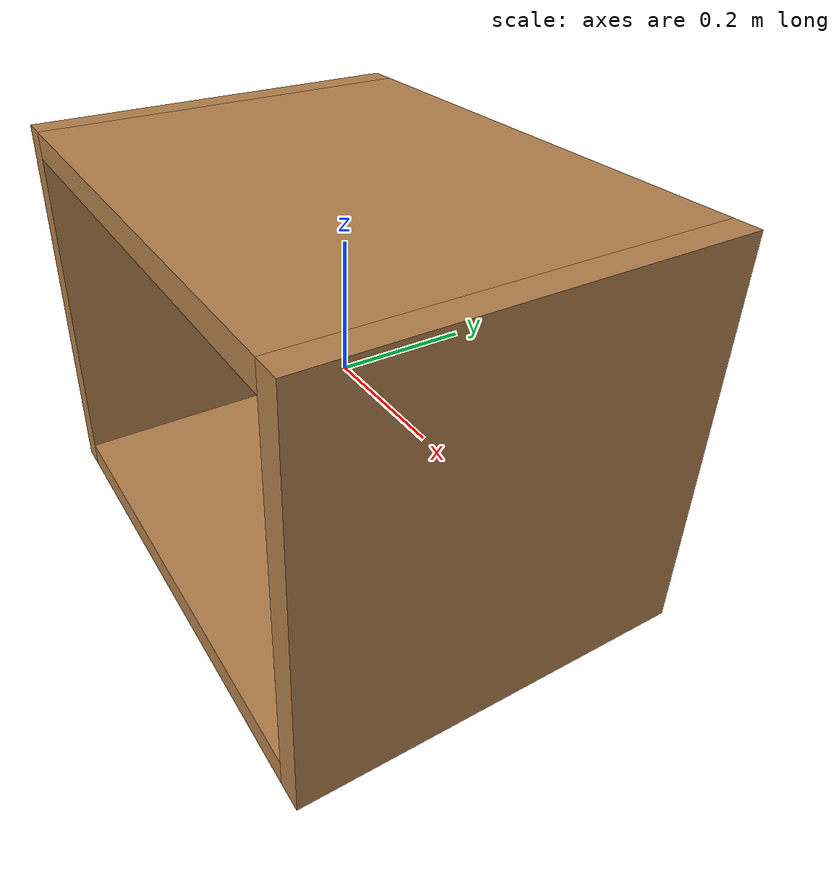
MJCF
<mujoco model="hinge_cab">
  <asset>
    <texture file="visuals/wood1.png" type="cube" name="tex"/>
    <material name="mat" shininess="0.1" texture="tex"/>
  </asset>
  <default>
    <default class="cab">
      <geom group="0" density="10"/>
    </default>
    <default class="region">
      <geom group="1" conaffinity="0" contype="0" rgba="0 1 0 0"/>
    </default>
  </default>
  <worldbody>
    <body>
      <body name="object">
        <geom pos="0.0 0 0.28" size="0.36 0.3 0.02" type="box" material="mat" class="cab" name="top"/>
        <geom pos="0.0 0 -0.28" size="0.36 0.3 0.02" type="box" material="mat" class="cab" name="bottom"/>
        <geom pos="0.0 0.28 0" size="0.36 0.02 0.26" type="box" material="mat" class="cab" name="back"/>
        <geom pos="0.38 0 0" size="0.02 0.3 0.3" type="box" material="mat" class="cab" name="right"/>
        <geom pos="-0.38 0 0" size="0.02 0.3 0.3" type="box" material="mat" class="cab" name="left"/>
        <body name="hingeleftdoor" pos="-0.38 -0.32 0">
          <joint axis="0 0 1" name="leftdoorhinge" limited="true" range="-1.57 0" damping="2"/>
          <site rgba="1 0 0 0" size="0.005" pos="-0.25 -0.20 0" name="leftdoor_p1"/>
          <site rgba="0 1 0 0" size="0.005" pos="-0.20 -0.20 0" name="leftdoor_p2"/>
          <site rgba="0 0 1 0" size="0.005" pos="-0.25 -0.20 0.05" name="leftdoor_p3"/>
        </body>
        <body name="hingerightdoor" pos="0.38 -0.32 0">
          <joint axis="0 0 1" name="rightdoorhinge" limited="true" range="0 1.57" damping="2"/>
          <site rgba="1 0 0 0" size="0.005" pos="0.25 -0.20 0" name="rightdoor_p1"/>
          <site rgba="0 1 0 0" size="0.005" pos="0.20 -0.20 0" name="rightdoor_p2"/>
          <site rgba="0 0 1 0" size="0.005" pos="0.25 -0.20 0.05" name="rightdoor_p3"/>
        </body>
        <!-- exterior bounding box points -->
        <geom class="region" name="reg_main" type="box" pos="0.0 0.0 0.0" size="0.0001 0.0001 0.0001"/>
      </body>
    </body>
  </worldbody>
</mujoco>
